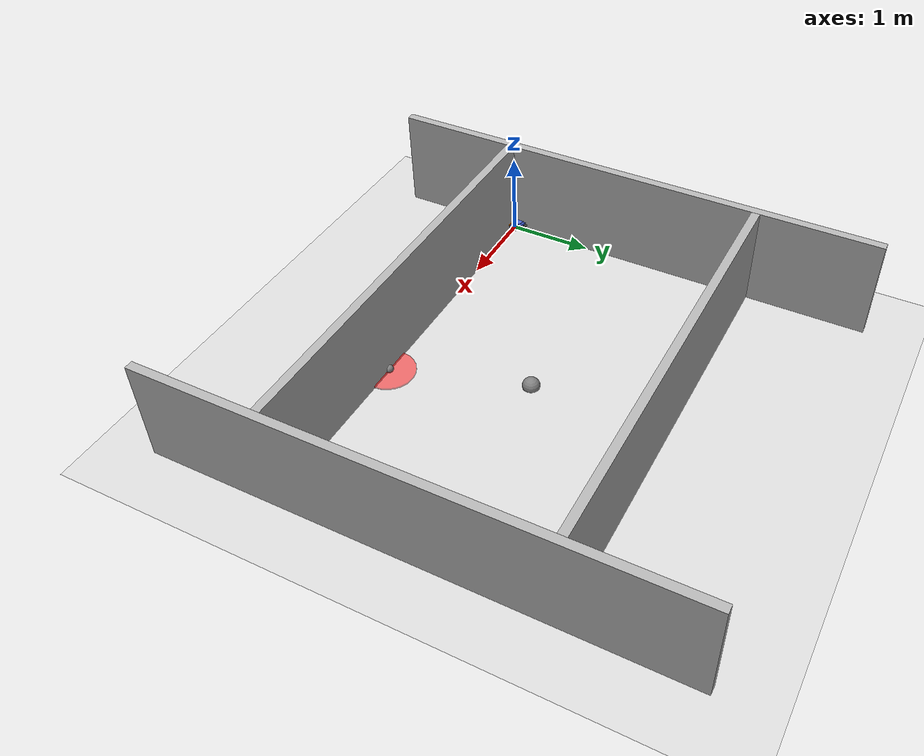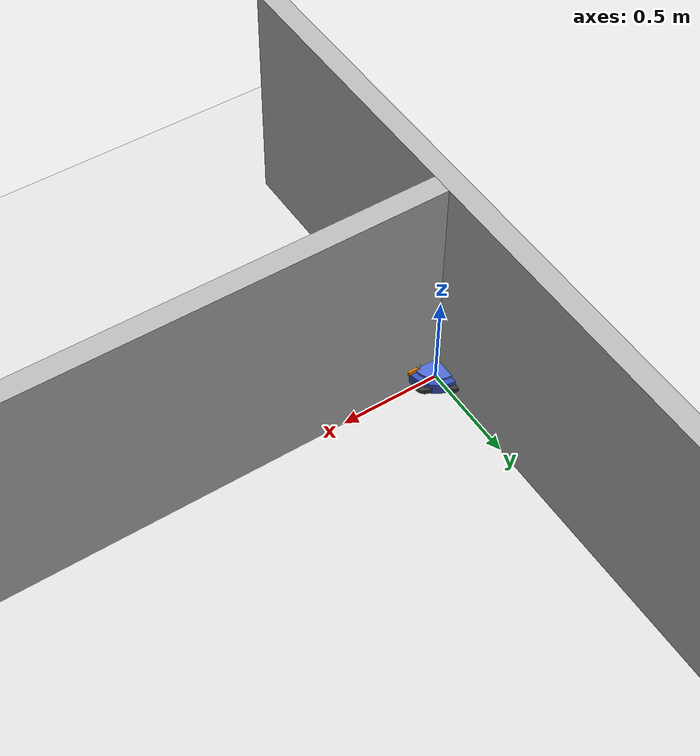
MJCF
<mujoco model="lab_empty">
  <include file="../assets/lekiwi_base.xml"/>

  <option timestep="0.005">
    <flag contact="enable"/>
  </option>

  <worldbody>
    <!-- Room: 5m × 6m rectangle -->
    <!-- Floor already included by lekiwi_base.xml -->

    <!-- Walls: 0.1m thick, 1.2m high -->
    <geom name="wall_north" type="box" size="2.5 0.05 0.6" pos="2.5 3.05 0.6" rgba="0.7 0.7 0.7 1"/>
    <geom name="wall_south" type="box" size="2.5 0.05 0.6" pos="2.5 -0.05 0.6" rgba="0.7 0.7 0.7 1"/>
    <geom name="wall_east"  type="box" size="0.05 3.0 0.6" pos="5.05 1.5 0.6" rgba="0.7 0.7 0.7 1"/>
    <geom name="wall_west"  type="box" size="0.05 3.0 0.6" pos="-0.05 1.5 0.6" rgba="0.7 0.7 0.7 1"/>

    <!-- Ceiling marker (visual only) -->
    <site name="room_center" pos="2.5 1.5 0.01" size="0.1"/>
  </worldbody>

  <!-- No obstacles — empty room -->
</mujoco>

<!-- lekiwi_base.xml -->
<mujoco model="lekiwi_base">
  <compiler angle="degree" meshdir="assets"/>

  <option timestep="0.005" gravity="0 0 -9.81">
    <flag contact="enable" gravity="enable"/>
  </option>

  <default>
    <geom type="cylinder" density="500" friction="0.6 0.3 0.3" condim="3"/>
    <joint type="hinge" armature="0.001" damping="0.01"/>
    <default class="floor">
      <geom type="plane" size="10 10 0.1" rgba="0.85 0.85 0.85 1"/>
    </default>
    <default class="wall">
      <geom type="box" rgba="0.7 0.7 0.7 1" density="1000"/>
    </default>
  </default>

  <!-- ====== World floor ====== -->
  <worldbody>
    <geom class="floor" pos="0 0 0"/>
    <light directional="true" pos="4 0 8" dir="0 0 -1" diffuse="0.9 0.9 0.9"/>
    <light directional="true" pos="-4 4 6" dir="0 0 -1" diffuse="0.3 0.3 0.3"/>

    <!-- ====== LeKiwi omnidirectional base ====== -->
    <body name="lekiwi_base" pos="0 0 0.06">
      <!-- Chassis: flat cylinder, radius 0.15m, height 0.06m -->
      <geom name="chassis_body" type="cylinder" size="0.15 0.03"
            pos="0 0 0.03" rgba="0.2 0.3 0.7 1" mass="2.5"/>
      <!-- Top plate marker -->
      <geom name="chassis_top" type="cylinder" size="0.12 0.005"
            pos="0 0 0.065" rgba="0.3 0.4 0.8 1" mass="0.1"/>

      <!-- Front direction indicator -->
      <geom name="front_marker" type="box" size="0.03 0.01 0.01"
            pos="0.13 0 0.07" rgba="1 0.5 0 1" mass="0.01"/>

      <!-- 3 omniwheels at 150°, -90°, 30° from forward -->
      <!-- Wheel 1: left-rear (150° / 5π/6) -->
      <body name="wheel_1" pos="0.108 -0.0625 0.025">
        <joint name="wheel_1_joint" type="hinge" axis="0 1 0"/>
        <geom name="wheel_1_geom" type="cylinder" size="0.05 0.012"
              pos="0 0 0" rgba="0.2 0.2 0.2 1" mass="0.08"/>
        <geom name="roller_1" type="sphere" size="0.008" pos="0.05 0 0"
              rgba="0.5 0.5 0.5 1" mass="0.005"/>
      </body>

      <!-- Wheel 2: back (-90° / -π/2) -->
      <body name="wheel_2" pos="0 0.125 0.025">
        <joint name="wheel_2_joint" type="hinge" axis="1 0 0"/>
        <geom name="wheel_2_geom" type="cylinder" size="0.05 0.012"
              pos="0 0 0" rgba="0.2 0.2 0.2 1" mass="0.08"/>
        <geom name="roller_2" type="sphere" size="0.008" pos="0.05 0 0"
              rgba="0.5 0.5 0.5 1" mass="0.005"/>
      </body>

      <!-- Wheel 3: right-front (30° / π/6) -->
      <body name="wheel_3" pos="0.108 0.0625 0.025">
        <joint name="wheel_3_joint" type="hinge" axis="-1 0 0"/>
        <geom name="wheel_3_geom" type="cylinder" size="0.05 0.012"
              pos="0 0 0" rgba="0.2 0.2 0.2 1" mass="0.08"/>
        <geom name="roller_3" type="sphere" size="0.008" pos="0.05 0 0"
              rgba="0.5 0.5 0.5 1" mass="0.005"/>
      </body>

      <!-- D435i camera mount point (referenced by d435i_mount.xml) -->
      <site name="camera_mount" pos="0.10 0 0.08" euler="0 -15 0" size="0.01"/>
    </body>

    <!-- ====== Goal marker ====== -->
    <body name="goal_marker" pos="3 0 0.02" mocap="true">
      <geom name="goal_geom" type="cylinder" size="0.3 0.01"
            rgba="1 0 0 0.5" mass="0"/>
      <site name="goal_site" pos="0 0 0.02" size="0.05"/>
    </body>
  </worldbody>

  <!-- ====== Actuators ====== -->
  <actuator>
    <motor name="motor_1" joint="wheel_1_joint" ctrlrange="-30 30" gear="1"/>
    <motor name="motor_2" joint="wheel_2_joint" ctrlrange="-30 30" gear="1"/>
    <motor name="motor_3" joint="wheel_3_joint" ctrlrange="-30 30" gear="1"/>
  </actuator>

  <!-- ====== Sensors ====== -->
  <sensor>
    <!-- Robot position & orientation -->
    <framepos name="robot_pos" objtype="body" objname="lekiwi_base"/>
    <framequat name="robot_quat" objtype="body" objname="lekiwi_base"/>
    <framelinvel name="robot_linvel" objtype="body" objname="lekiwi_base"/>
    <frameangvel name="robot_angvel" objtype="body" objname="lekiwi_base"/>
    <!-- Goal relative position -->
    <framepos name="goal_pos" objtype="body" objname="goal_marker"/>
    <!-- Wheel velocities -->
    <actuatorfrc name="actuator_force_1" actuator="motor_1"/>
    <actuatorfrc name="actuator_force_2" actuator="motor_2"/>
    <actuatorfrc name="actuator_force_3" actuator="motor_3"/>
  </sensor>
</mujoco>
